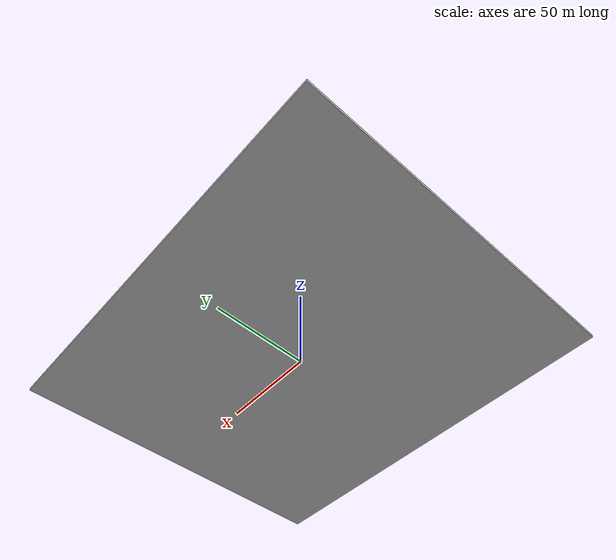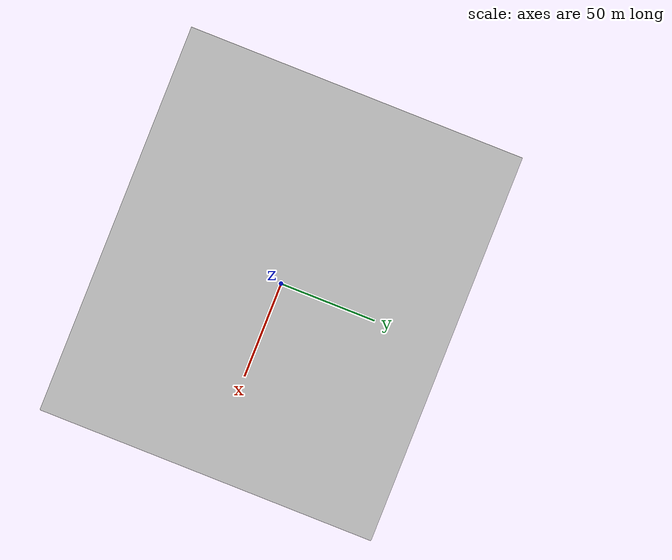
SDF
<?xml version='1.0' ?>
<sdf version="1.6">
    <model name="ocean">
        <static>true</static>
        <link name="link">
            <visual name="visual">
                <geometry>
                    <mesh>
                        <uri>meshes/waterlow_small.dae</uri>
                    </mesh>
                </geometry>
                <plugin filename="gz-sim-shader-param-system" name="gz::sim::systems::ShaderParam">
                    <shader language="glsl">
                        <vertex>materials/programs/GerstnerWaves_vs_330.glsl</vertex>
                        <fragment>materials/programs/GerstnerWaves_fs_330.glsl</fragment>
                    </shader>
                    <shader language="metal">
                        <vertex>materials/programs/GerstnerWaves_vs.metal</vertex>
                        <fragment>materials/programs/GerstnerWaves_fs.metal</fragment>
                    </shader>
                    <param>
                        <shader>vertex</shader>
                        <name>Nwaves</name>
                        <type>int</type>
                        <value>0</value>
                    </param>
                    <param>
                        <shader>vertex</shader>
                        <name>rescale</name>
                        <type>float</type>
                        <value>0.125</value>
                    </param>
                    <param>
                        <shader>vertex</shader>
                        <name>bumpScale</name>
                        <type>float_array</type>
                        <value>75 75</value>
                    </param>
                    <param>
                        <shader>vertex</shader>
                        <name>bumpSpeed</name>
                        <type>float_array</type>
                        <value>0.01 0.0</value>
                    </param>
                    <param>
                        <shader>vertex</shader>
                        <name>amplitude</name>
                        <type>float_array</type>
                        <value>0.42 0.28, 0.21</value>
                    </param>
                    <param>
                        <shader>vertex</shader>
                        <name>wavenumber</name>
                        <type>float_array</type>
                        <value>0.028 0.0896 0.0504</value>
                    </param>
                    <param>
                        <shader>vertex</shader>
                        <name>omega</name>
                        <type>float_array</type>
                        <value>0.5 1.7 1.0</value>
                    </param>
                    <param>
                        <shader>vertex</shader>
                        <name>dir0</name>
                        <type>float_array</type>
                        <value>-1.0 0.0</value>
                    </param>
                    <param>
                        <shader>vertex</shader>
                        <name>dir1</name>
                        <type>float_array</type>
                        <value>-0.7 0.7</value>
                    </param>
                    <param>
                        <shader>vertex</shader>
                        <name>dir2</name>
                        <type>float_array</type>
                        <value>0.7 0.7</value>
                    </param>
                    <param>
                        <shader>vertex</shader>
                        <name>steepness</name>
                        <type>float_array</type>
                        <value>1.0 1.5 0.8</value>
                    </param>
                    <param>
                        <shader>vertex</shader>
                        <name>tau</name>
                        <type>float</type>
                        <value>2.0</value>
                    </param>
                    <param>
                        <shader>vertex</shader>
                        <name>camera_position_object_space</name>
                    </param>
                    <param>
                        <shader>vertex</shader>
                        <name>worldviewproj_matrix</name>
                    </param>
                    <param>
                        <shader>vertex</shader>
                        <name>t</name>
                        <value>TIME</value>
                    </param>
                    <param>
                        <shader>fragment</shader>
                        <name>hdrMultiplier</name>
                        <type>float</type>
                        <value>0.4</value>
                    </param>
                    <param>
                        <shader>fragment</shader>
                        <name>fresnelPower</name>
                        <type>float</type>
                        <value>5.0</value>
                    </param>
                    <param>
                        <shader>fragment</shader>
                        <name>shallowColor</name>
                        <type>float_array</type>
                        <value>0.0 0.1 0.2 1.0</value>
                    </param>
                    <param>
                        <shader>fragment</shader>
                        <name>deepColor</name>
                        <type>float_array</type>
                        <value>0.0 0.05 0.02 1.0</value>
                    </param>
                    <param>
                        <shader>fragment</shader>
                        <name>cubeMap</name>
                        <type>texture_cube</type>
                        <value>materials/textures/skybox_lowres.dds</value>
                        <!-- arg: texture coord set index -->
                        <arg>1</arg>
                    </param>
                    <param>
                        <shader>fragment</shader>
                        <name>bumpMap</name>
                        <type>texture</type>
                        <value>materials/textures/wave_normals.dds</value>
                    </param>
                </plugin>
            </visual>
        </link>
    </model>
</sdf>
